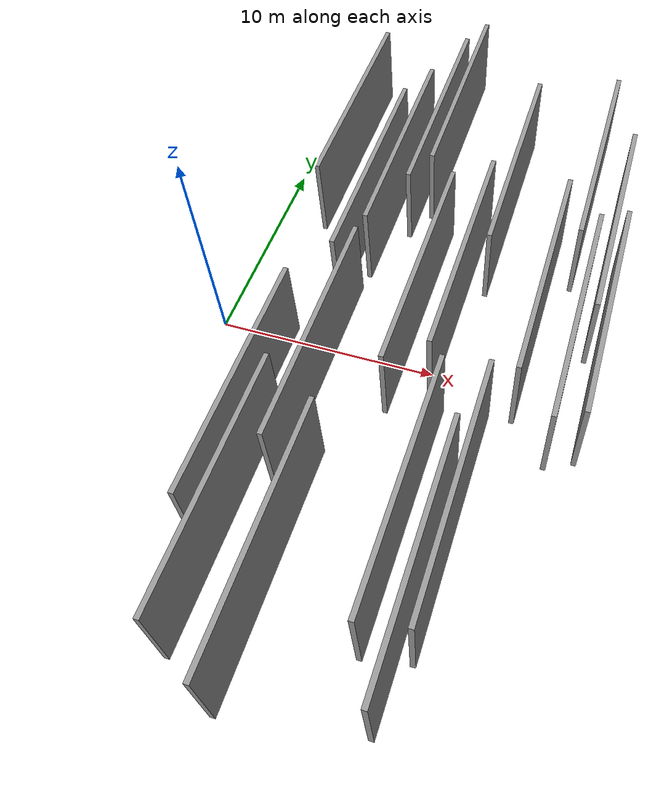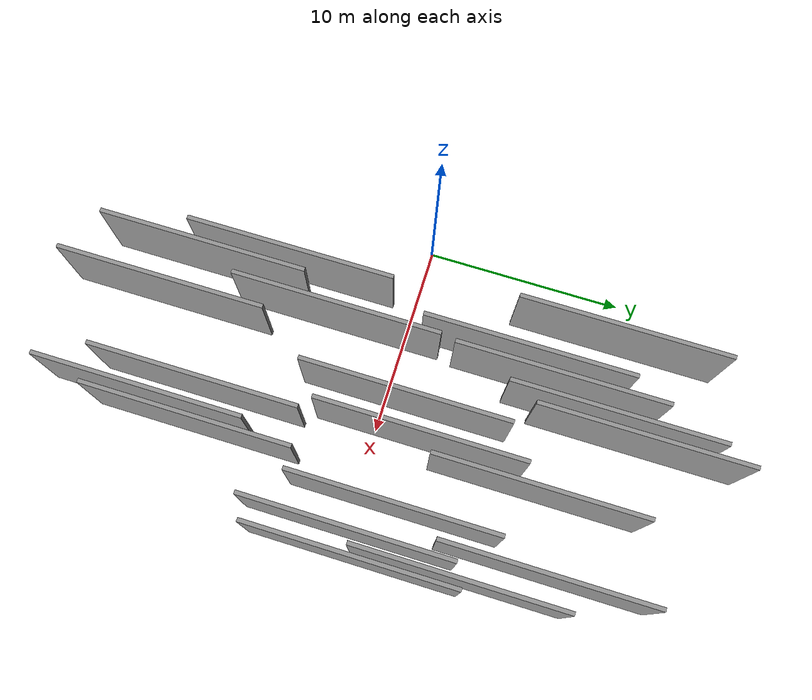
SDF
<sdf version="1.6">
 <world name="default">
  <scene>
   <sky><clouds><speed>12</speed></clouds></sky>
   <ambient>0.4 0.4 0.4 1</ambient>
   <background>0.7 0.7 0.7 1</background>
   <shadows>1</shadows>
  </scene>
  <gravity>0 0 -9.8066</gravity>
  <magnetic_field>6e-06 2.3e-05 -4.2e-05</magnetic_field>
  <physics default="0" name="default_physics" type="ode">
   <ode>
    <solver>
     <type>quick</type>
     <iters>10</iters>
     <sor>1.0</sor>
     <use_dynamic_moi_rescaling>0</use_dynamic_moi_rescaling>
    </solver>
    <constraints>
     <cfm>0</cfm>
     <erp>0.2</erp>
     <contact_max_correcting_vel>100</contact_max_correcting_vel>
     <contact_surface_layer>0.001</contact_surface_layer>
    </constraints>
   </ode>
   <max_step_size>0.004</max_step_size>
   <real_time_factor>1</real_time_factor>
   <real_time_update_rate>250</real_time_update_rate>
  </physics>
  <light name="sun" type="directional">
   <pose>0 0 10 0 0 0</pose>
   <diffuse>0.8 0.8 0.8 1</diffuse>
   <specular>0.2 0.2 0.2 1</specular>
   <attenuation>
    <range>1000</range>
    <constant>0.9</constant>
    <linear>0.01</linear>
    <quadratic>0.001</quadratic>
   </attenuation>
   <direction>-0.5 0.1 -0.9</direction>
  </light>
  <model name="grey_wall_1">
   <static>1</static>
   <pose>3.3472 9.8703 2.5 0.000000 0.000000 1.570796</pose>
   <link name="link">
    <pose>0 0 2.00 0 0 0</pose>
    <collision name="collision"><geometry><box><size>10.00 0.2 4.00</size></box></geometry></collision>
    <visual name="visual">
     <cast_shadows>0</cast_shadows>
     <geometry><box><size>10.00 0.2 4.00</size></box></geometry>
     <material>
      <script>
       <uri>model://grey_wall/materials/scripts</uri>
       <uri>model://grey_wall/materials/textures</uri>
       <name>vrc/grey_wall</name>
      </script>
     </material>
    </visual>
   </link>
  </model>
  <model name="grey_wall_2">
   <static>1</static>
   <pose>5.0720 -9.8414 2.5 0.000000 0.000000 1.570796</pose>
   <link name="link">
    <pose>0 0 2.00 0 0 0</pose>
    <collision name="collision"><geometry><box><size>10.00 0.2 4.00</size></box></geometry></collision>
    <visual name="visual">
     <cast_shadows>0</cast_shadows>
     <geometry><box><size>10.00 0.2 4.00</size></box></geometry>
     <material>
      <script>
       <uri>model://grey_wall/materials/scripts</uri>
       <uri>model://grey_wall/materials/textures</uri>
       <name>vrc/grey_wall</name>
      </script>
     </material>
    </visual>
   </link>
  </model>
  <model name="grey_wall_3">
   <static>1</static>
   <pose>13.0197 -7.7997 2.5 0.000000 0.000000 1.570796</pose>
   <link name="link">
    <pose>0 0 2.00 0 0 0</pose>
    <collision name="collision"><geometry><box><size>10.00 0.2 4.00</size></box></geometry></collision>
    <visual name="visual">
     <cast_shadows>0</cast_shadows>
     <geometry><box><size>10.00 0.2 4.00</size></box></geometry>
     <material>
      <script>
       <uri>model://grey_wall/materials/scripts</uri>
       <uri>model://grey_wall/materials/textures</uri>
       <name>vrc/grey_wall</name>
      </script>
     </material>
    </visual>
   </link>
  </model>
  <model name="grey_wall_4">
   <static>1</static>
   <pose>16.2822 5.7857 2.5 0.000000 0.000000 1.570796</pose>
   <link name="link">
    <pose>0 0 2.00 0 0 0</pose>
    <collision name="collision"><geometry><box><size>10.00 0.2 4.00</size></box></geometry></collision>
    <visual name="visual">
     <cast_shadows>0</cast_shadows>
     <geometry><box><size>10.00 0.2 4.00</size></box></geometry>
     <material>
      <script>
       <uri>model://grey_wall/materials/scripts</uri>
       <uri>model://grey_wall/materials/textures</uri>
       <name>vrc/grey_wall</name>
      </script>
     </material>
    </visual>
   </link>
  </model>
  <model name="grey_wall_5">
   <static>1</static>
   <pose>12.4127 -10.3117 2.5 0.000000 0.000000 1.570796</pose>
   <link name="link">
    <pose>0 0 2.00 0 0 0</pose>
    <collision name="collision"><geometry><box><size>10.00 0.2 4.00</size></box></geometry></collision>
    <visual name="visual">
     <cast_shadows>0</cast_shadows>
     <geometry><box><size>10.00 0.2 4.00</size></box></geometry>
     <material>
      <script>
       <uri>model://grey_wall/materials/scripts</uri>
       <uri>model://grey_wall/materials/textures</uri>
       <name>vrc/grey_wall</name>
      </script>
     </material>
    </visual>
   </link>
  </model>
  <model name="grey_wall_6">
   <static>1</static>
   <pose>7.2855 10.4840 2.5 0.000000 0.000000 1.570796</pose>
   <link name="link">
    <pose>0 0 2.00 0 0 0</pose>
    <collision name="collision"><geometry><box><size>10.00 0.2 4.00</size></box></geometry></collision>
    <visual name="visual">
     <cast_shadows>0</cast_shadows>
     <geometry><box><size>10.00 0.2 4.00</size></box></geometry>
     <material>
      <script>
       <uri>model://grey_wall/materials/scripts</uri>
       <uri>model://grey_wall/materials/textures</uri>
       <name>vrc/grey_wall</name>
      </script>
     </material>
    </visual>
   </link>
  </model>
  <model name="grey_wall_7">
   <static>1</static>
   <pose>14.9971 9.3803 2.5 0.000000 0.000000 1.570796</pose>
   <link name="link">
    <pose>0 0 2.00 0 0 0</pose>
    <collision name="collision"><geometry><box><size>10.00 0.2 4.00</size></box></geometry></collision>
    <visual name="visual">
     <cast_shadows>0</cast_shadows>
     <geometry><box><size>10.00 0.2 4.00</size></box></geometry>
     <material>
      <script>
       <uri>model://grey_wall/materials/scripts</uri>
       <uri>model://grey_wall/materials/textures</uri>
       <name>vrc/grey_wall</name>
      </script>
     </material>
    </visual>
   </link>
  </model>
  <model name="grey_wall_8">
   <static>1</static>
   <pose>11.2402 -8.0979 2.5 0.000000 0.000000 1.570796</pose>
   <link name="link">
    <pose>0 0 2.00 0 0 0</pose>
    <collision name="collision"><geometry><box><size>10.00 0.2 4.00</size></box></geometry></collision>
    <visual name="visual">
     <cast_shadows>0</cast_shadows>
     <geometry><box><size>10.00 0.2 4.00</size></box></geometry>
     <material>
      <script>
       <uri>model://grey_wall/materials/scripts</uri>
       <uri>model://grey_wall/materials/textures</uri>
       <name>vrc/grey_wall</name>
      </script>
     </material>
    </visual>
   </link>
  </model>
  <model name="grey_wall_9">
   <static>1</static>
   <pose>5.4646 5.9415 2.5 0.000000 0.000000 1.570796</pose>
   <link name="link">
    <pose>0 0 2.00 0 0 0</pose>
    <collision name="collision"><geometry><box><size>10.00 0.2 4.00</size></box></geometry></collision>
    <visual name="visual">
     <cast_shadows>0</cast_shadows>
     <geometry><box><size>10.00 0.2 4.00</size></box></geometry>
     <material>
      <script>
       <uri>model://grey_wall/materials/scripts</uri>
       <uri>model://grey_wall/materials/textures</uri>
       <name>vrc/grey_wall</name>
      </script>
     </material>
    </visual>
   </link>
  </model>
  <model name="grey_wall_10">
   <static>1</static>
   <pose>10.6136 2.3437 2.5 0.000000 0.000000 1.570796</pose>
   <link name="link">
    <pose>0 0 2.00 0 0 0</pose>
    <collision name="collision"><geometry><box><size>10.00 0.2 4.00</size></box></geometry></collision>
    <visual name="visual">
     <cast_shadows>0</cast_shadows>
     <geometry><box><size>10.00 0.2 4.00</size></box></geometry>
     <material>
      <script>
       <uri>model://grey_wall/materials/scripts</uri>
       <uri>model://grey_wall/materials/textures</uri>
       <name>vrc/grey_wall</name>
      </script>
     </material>
    </visual>
   </link>
  </model>
  <model name="grey_wall_11">
   <static>1</static>
   <pose>6.2844 7.6744 2.5 0.000000 0.000000 1.570796</pose>
   <link name="link">
    <pose>0 0 2.00 0 0 0</pose>
    <collision name="collision"><geometry><box><size>10.00 0.2 4.00</size></box></geometry></collision>
    <visual name="visual">
     <cast_shadows>0</cast_shadows>
     <geometry><box><size>10.00 0.2 4.00</size></box></geometry>
     <material>
      <script>
       <uri>model://grey_wall/materials/scripts</uri>
       <uri>model://grey_wall/materials/textures</uri>
       <name>vrc/grey_wall</name>
      </script>
     </material>
    </visual>
   </link>
  </model>
  <model name="grey_wall_12">
   <static>1</static>
   <pose>14.0389 2.1374 2.5 0.000000 0.000000 1.570796</pose>
   <link name="link">
    <pose>0 0 2.00 0 0 0</pose>
    <collision name="collision"><geometry><box><size>10.00 0.2 4.00</size></box></geometry></collision>
    <visual name="visual">
     <cast_shadows>0</cast_shadows>
     <geometry><box><size>10.00 0.2 4.00</size></box></geometry>
     <material>
      <script>
       <uri>model://grey_wall/materials/scripts</uri>
       <uri>model://grey_wall/materials/textures</uri>
       <name>vrc/grey_wall</name>
      </script>
     </material>
    </visual>
   </link>
  </model>
  <model name="grey_wall_13">
   <static>1</static>
   <pose>9.1076 1.1937 2.5 0.000000 0.000000 1.570796</pose>
   <link name="link">
    <pose>0 0 2.00 0 0 0</pose>
    <collision name="collision"><geometry><box><size>10.00 0.2 4.00</size></box></geometry></collision>
    <visual name="visual">
     <cast_shadows>0</cast_shadows>
     <geometry><box><size>10.00 0.2 4.00</size></box></geometry>
     <material>
      <script>
       <uri>model://grey_wall/materials/scripts</uri>
       <uri>model://grey_wall/materials/textures</uri>
       <name>vrc/grey_wall</name>
      </script>
     </material>
    </visual>
   </link>
  </model>
  <model name="grey_wall_14">
   <static>1</static>
   <pose>7.9416 11.8990 2.5 0.000000 0.000000 1.570796</pose>
   <link name="link">
    <pose>0 0 2.00 0 0 0</pose>
    <collision name="collision"><geometry><box><size>10.00 0.2 4.00</size></box></geometry></collision>
    <visual name="visual">
     <cast_shadows>0</cast_shadows>
     <geometry><box><size>10.00 0.2 4.00</size></box></geometry>
     <material>
      <script>
       <uri>model://grey_wall/materials/scripts</uri>
       <uri>model://grey_wall/materials/textures</uri>
       <name>vrc/grey_wall</name>
      </script>
     </material>
    </visual>
   </link>
  </model>
  <model name="grey_wall_15">
   <static>1</static>
   <pose>6.1265 -3.0123 2.5 0.000000 0.000000 1.570796</pose>
   <link name="link">
    <pose>0 0 2.00 0 0 0</pose>
    <collision name="collision"><geometry><box><size>10.00 0.2 4.00</size></box></geometry></collision>
    <visual name="visual">
     <cast_shadows>0</cast_shadows>
     <geometry><box><size>10.00 0.2 4.00</size></box></geometry>
     <material>
      <script>
       <uri>model://grey_wall/materials/scripts</uri>
       <uri>model://grey_wall/materials/textures</uri>
       <name>vrc/grey_wall</name>
      </script>
     </material>
    </visual>
   </link>
  </model>
  <model name="grey_wall_16">
   <static>1</static>
   <pose>7.3140 -11.0923 2.5 0.000000 0.000000 1.570796</pose>
   <link name="link">
    <pose>0 0 2.00 0 0 0</pose>
    <collision name="collision"><geometry><box><size>10.00 0.2 4.00</size></box></geometry></collision>
    <visual name="visual">
     <cast_shadows>0</cast_shadows>
     <geometry><box><size>10.00 0.2 4.00</size></box></geometry>
     <material>
      <script>
       <uri>model://grey_wall/materials/scripts</uri>
       <uri>model://grey_wall/materials/textures</uri>
       <name>vrc/grey_wall</name>
      </script>
     </material>
    </visual>
   </link>
  </model>
  <model name="grey_wall_17">
   <static>1</static>
   <pose>11.4724 8.0607 2.5 0.000000 0.000000 1.570796</pose>
   <link name="link">
    <pose>0 0 2.00 0 0 0</pose>
    <collision name="collision"><geometry><box><size>10.00 0.2 4.00</size></box></geometry></collision>
    <visual name="visual">
     <cast_shadows>0</cast_shadows>
     <geometry><box><size>10.00 0.2 4.00</size></box></geometry>
     <material>
      <script>
       <uri>model://grey_wall/materials/scripts</uri>
       <uri>model://grey_wall/materials/textures</uri>
       <name>vrc/grey_wall</name>
      </script>
     </material>
    </visual>
   </link>
  </model>
  <model name="grey_wall_18">
   <static>1</static>
   <pose>16.7370 1.0006 2.5 0.000000 0.000000 1.570796</pose>
   <link name="link">
    <pose>0 0 2.00 0 0 0</pose>
    <collision name="collision"><geometry><box><size>10.00 0.2 4.00</size></box></geometry></collision>
    <visual name="visual">
     <cast_shadows>0</cast_shadows>
     <geometry><box><size>10.00 0.2 4.00</size></box></geometry>
     <material>
      <script>
       <uri>model://grey_wall/materials/scripts</uri>
       <uri>model://grey_wall/materials/textures</uri>
       <name>vrc/grey_wall</name>
      </script>
     </material>
    </visual>
   </link>
  </model>
  <model name="grey_wall_19">
   <static>1</static>
   <pose>4.2111 -5.8537 2.5 0.000000 0.000000 1.570796</pose>
   <link name="link">
    <pose>0 0 2.00 0 0 0</pose>
    <collision name="collision"><geometry><box><size>10.00 0.2 4.00</size></box></geometry></collision>
    <visual name="visual">
     <cast_shadows>0</cast_shadows>
     <geometry><box><size>10.00 0.2 4.00</size></box></geometry>
     <material>
      <script>
       <uri>model://grey_wall/materials/scripts</uri>
       <uri>model://grey_wall/materials/textures</uri>
       <name>vrc/grey_wall</name>
      </script>
     </material>
    </visual>
   </link>
  </model>
  <model name="grey_wall_20">
   <static>1</static>
   <pose>15.6525 0.4967 2.5 0.000000 0.000000 1.570796</pose>
   <link name="link">
    <pose>0 0 2.00 0 0 0</pose>
    <collision name="collision"><geometry><box><size>10.00 0.2 4.00</size></box></geometry></collision>
    <visual name="visual">
     <cast_shadows>0</cast_shadows>
     <geometry><box><size>10.00 0.2 4.00</size></box></geometry>
     <material>
      <script>
       <uri>model://grey_wall/materials/scripts</uri>
       <uri>model://grey_wall/materials/textures</uri>
       <name>vrc/grey_wall</name>
      </script>
     </material>
    </visual>
   </link>
  </model>
 </world>
</sdf>
